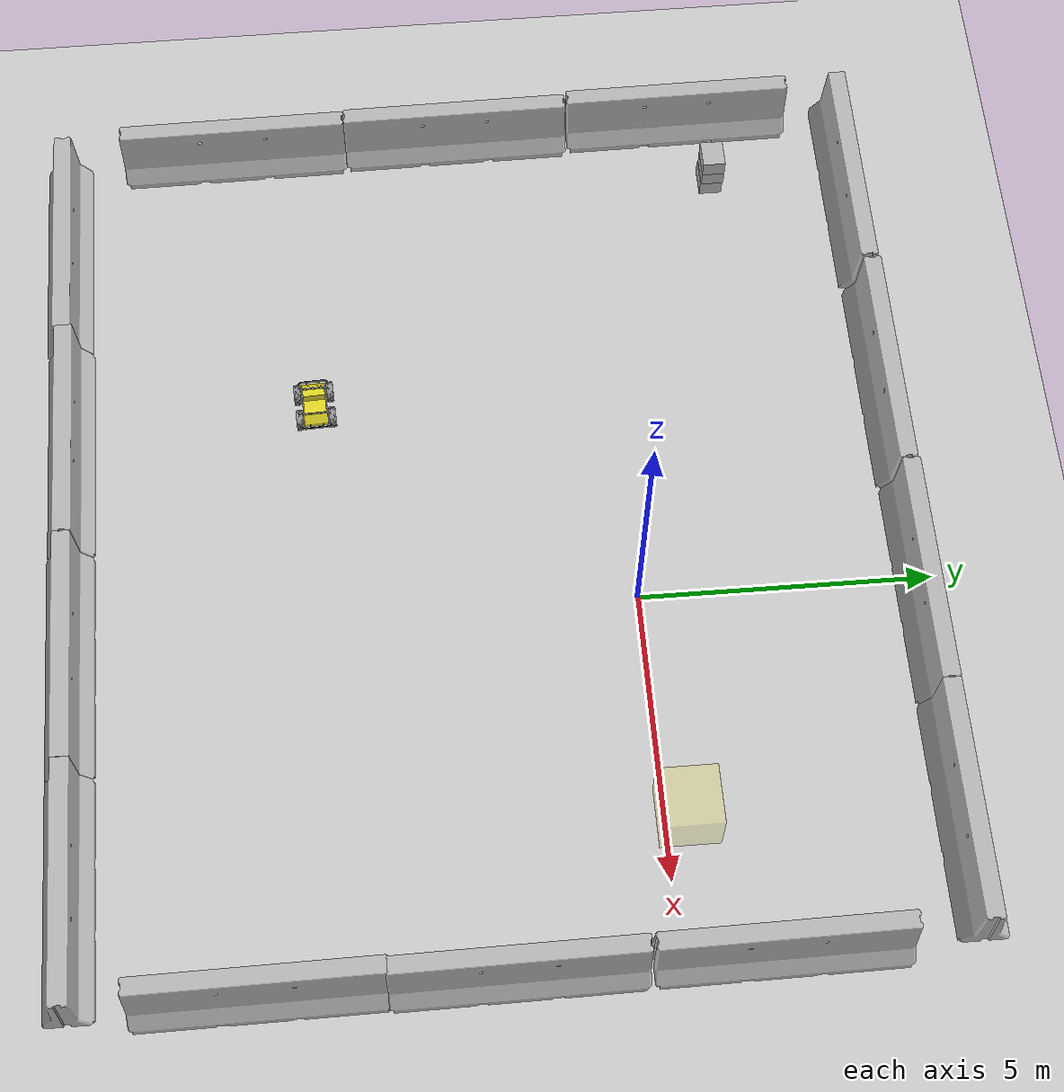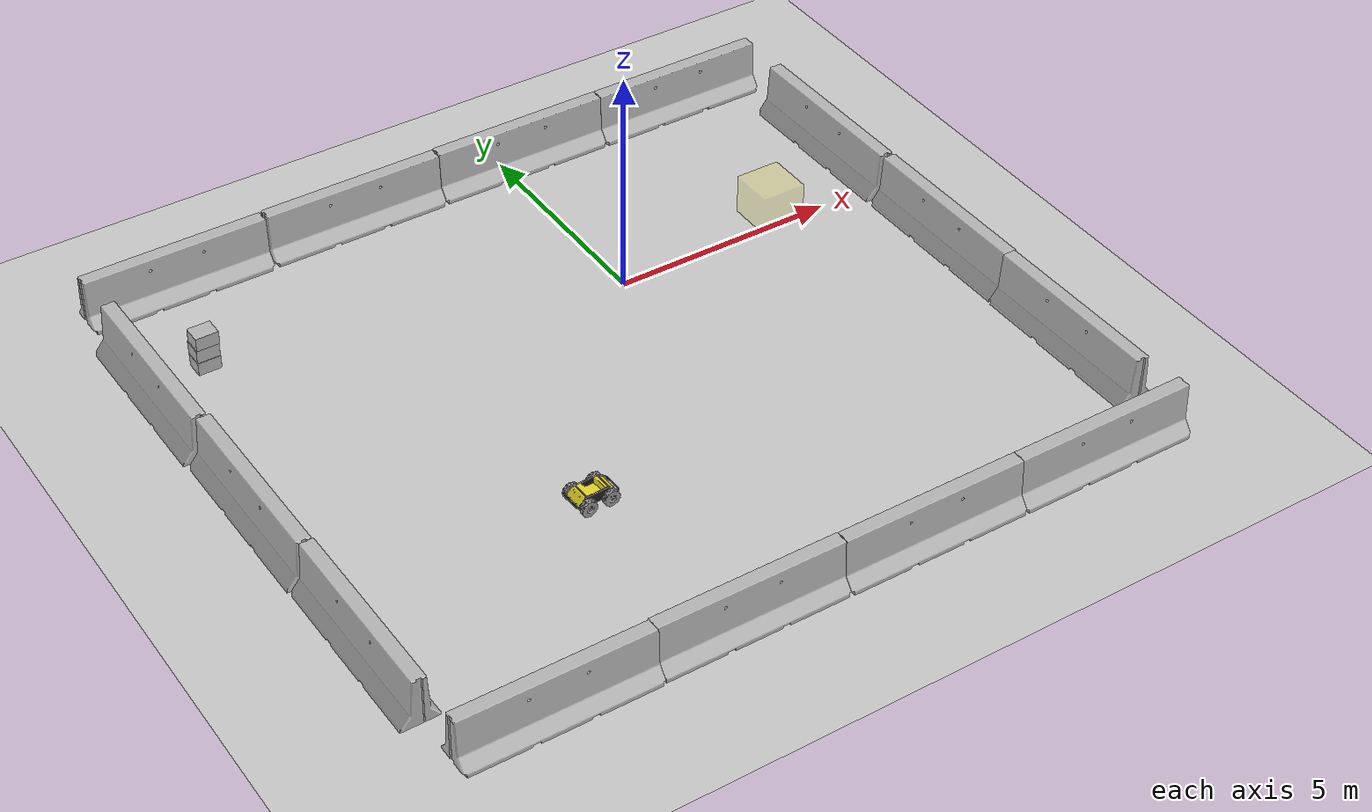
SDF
<sdf version="1.6">
 <world name="default">
  <light name="sun" type="directional">
   <pose>0 0 10 0 -0 0</pose>
   <diffuse>0.8 0.8 0.8 1</diffuse>
   <specular>0.2 0.2 0.2 1</specular>
   <attenuation>
    <range>1000</range>
    <constant>0.9</constant>
    <linear>0.01</linear>
    <quadratic>0.001</quadratic>
   </attenuation>
   <direction>-0.5 0.1 -0.9</direction>
  </light>
  <model name="ground_plane">
   <static>1</static>
   <link name="link">
    <collision name="collision">
     <geometry><plane><normal>0 0 1</normal><size>100 100</size></plane></geometry>
     <surface><friction><ode><mu>100</mu><mu2>50</mu2></ode></friction></surface>
    </collision>
    <visual name="visual">
     <cast_shadows>0</cast_shadows>
     <geometry><plane><normal>0 0 1</normal><size>100 100</size></plane></geometry>
     <material>
      <script><uri>file://media/materials/scripts/gazebo.material</uri><name>Gazebo/Grey</name></script>
     </material>
    </visual>
   </link>
  </model>
  <gravity>0 0 -9.8</gravity>
  <magnetic_field>6e-06 2.3e-05 -4.2e-05</magnetic_field>
  <atmosphere type="adiabatic"/>
  <physics name="default_physics" default="0" type="ode">
   <max_step_size>0.001</max_step_size>
   <real_time_factor>1</real_time_factor>
   <real_time_update_rate>1000</real_time_update_rate>
  </physics>
  <scene><ambient>0.4 0.4 0.4 1</ambient><background>0.7 0.7 0.7 1</background><shadows>1</shadows></scene>
  <audio><device>default</device></audio>
  <spherical_coordinates>
   <surface_model>EARTH_WGS84</surface_model>
   <latitude_deg>0</latitude_deg>
   <longitude_deg>0</longitude_deg>
   <elevation>0</elevation>
   <heading_deg>0</heading_deg>
  </spherical_coordinates>
  <model name="jersey_barrier">
   <static>1</static>
   <link name="link">
    <visual name="visual">
     <geometry><mesh><uri>model://jersey_barrier/meshes/jersey_barrier.dae</uri></mesh></geometry>
    </visual>
    <collision name="upright">
     <pose>0 0 0.5715 0 -0 0</pose>
     <geometry><box><size>4.06542 0.3063 1.143</size></box></geometry>
    </collision>
    <collision name="base">
     <pose>0 0 0.032258 0 -0 0</pose>
     <geometry><box><size>4.06542 0.8107 0.064516</size></box></geometry>
    </collision>
    <collision name="base2">
     <pose>0 0 0.1 0 -0 0</pose>
     <geometry><box><size>4.06542 0.65 0.1</size></box></geometry>
    </collision>
    <collision name="base3">
     <pose>0 0 0.2 0 -0 0</pose>
     <geometry><box><size>4.06542 0.5 0.1</size></box></geometry>
    </collision>
    <collision name="left-angle">
     <pose>0 -0.224 0.2401 0.9 -0 0</pose>
     <geometry><box><size>4.06542 0.5 0.064516</size></box></geometry>
    </collision>
    <collision name="right-angle">
     <pose>0 0.224 0.2401 -0.9 0 0</pose>
     <geometry><box><size>4.06542 0.5 0.064516</size></box></geometry>
    </collision>
   </link>
   <pose>-7.48902 -9.51876 0 0 -0 0</pose>
  </model>
  <model name="jersey_barrier_0">
   <static>1</static>
   <link name="link">
    <visual name="visual">
     <geometry><mesh><uri>model://jersey_barrier/meshes/jersey_barrier.dae</uri></mesh></geometry>
    </visual>
    <collision name="upright">
     <pose>0 0 0.5715 0 -0 0</pose>
     <geometry><box><size>4.06542 0.3063 1.143</size></box></geometry>
    </collision>
    <collision name="base">
     <pose>0 0 0.032258 0 -0 0</pose>
     <geometry><box><size>4.06542 0.8107 0.064516</size></box></geometry>
    </collision>
    <collision name="base2">
     <pose>0 0 0.1 0 -0 0</pose>
     <geometry><box><size>4.06542 0.65 0.1</size></box></geometry>
    </collision>
    <collision name="base3">
     <pose>0 0 0.2 0 -0 0</pose>
     <geometry><box><size>4.06542 0.5 0.1</size></box></geometry>
    </collision>
    <collision name="left-angle">
     <pose>0 -0.224 0.2401 0.9 -0 0</pose>
     <geometry><box><size>4.06542 0.5 0.064516</size></box></geometry>
    </collision>
    <collision name="right-angle">
     <pose>0 0.224 0.2401 -0.9 0 0</pose>
     <geometry><box><size>4.06542 0.5 0.064516</size></box></geometry>
    </collision>
   </link>
   <pose>-3.47619 -9.48837 0 0 -0 0</pose>
  </model>
  <model name="jersey_barrier_clone">
   <static>1</static>
   <link name="link">
    <visual name="visual">
     <geometry><mesh><uri>model://jersey_barrier/meshes/jersey_barrier.dae</uri></mesh></geometry>
    </visual>
    <collision name="upright">
     <pose>0 0 0.5715 0 -0 0</pose>
     <geometry><box><size>4.06542 0.3063 1.143</size></box></geometry>
    </collision>
    <collision name="base">
     <pose>0 0 0.032258 0 -0 0</pose>
     <geometry><box><size>4.06542 0.8107 0.064516</size></box></geometry>
    </collision>
    <collision name="base2">
     <pose>0 0 0.1 0 -0 0</pose>
     <geometry><box><size>4.06542 0.65 0.1</size></box></geometry>
    </collision>
    <collision name="base3">
     <pose>0 0 0.2 0 -0 0</pose>
     <geometry><box><size>4.06542 0.5 0.1</size></box></geometry>
    </collision>
    <collision name="left-angle">
     <pose>0 -0.224 0.2401 0.9 -0 0</pose>
     <geometry><box><size>4.06542 0.5 0.064516</size></box></geometry>
    </collision>
    <collision name="right-angle">
     <pose>0 0.224 0.2401 -0.9 0 0</pose>
     <geometry><box><size>4.06542 0.5 0.064516</size></box></geometry>
    </collision>
   </link>
   <pose>0.564448 -9.49927 0 0 -0 0</pose>
  </model>
  <model name="jersey_barrier_clone_0">
   <static>1</static>
   <link name="link">
    <visual name="visual">
     <geometry><mesh><uri>model://jersey_barrier/meshes/jersey_barrier.dae</uri></mesh></geometry>
    </visual>
    <collision name="upright">
     <pose>0 0 0.5715 0 -0 0</pose>
     <geometry><box><size>4.06542 0.3063 1.143</size></box></geometry>
    </collision>
    <collision name="base">
     <pose>0 0 0.032258 0 -0 0</pose>
     <geometry><box><size>4.06542 0.8107 0.064516</size></box></geometry>
    </collision>
    <collision name="base2">
     <pose>0 0 0.1 0 -0 0</pose>
     <geometry><box><size>4.06542 0.65 0.1</size></box></geometry>
    </collision>
    <collision name="base3">
     <pose>0 0 0.2 0 -0 0</pose>
     <geometry><box><size>4.06542 0.5 0.1</size></box></geometry>
    </collision>
    <collision name="left-angle">
     <pose>0 -0.224 0.2401 0.9 -0 0</pose>
     <geometry><box><size>4.06542 0.5 0.064516</size></box></geometry>
    </collision>
    <collision name="right-angle">
     <pose>0 0.224 0.2401 -0.9 0 0</pose>
     <geometry><box><size>4.06542 0.5 0.064516</size></box></geometry>
    </collision>
   </link>
   <pose>4.5827 -9.50146 0 0 -0 0</pose>
  </model>
  <model name="jersey_barrier_clone_1">
   <static>1</static>
   <link name="link">
    <visual name="visual">
     <geometry><mesh><uri>model://jersey_barrier/meshes/jersey_barrier.dae</uri></mesh></geometry>
    </visual>
    <collision name="upright">
     <pose>0 0 0.5715 0 -0 0</pose>
     <geometry><box><size>4.06542 0.3063 1.143</size></box></geometry>
    </collision>
    <collision name="base">
     <pose>0 0 0.032258 0 -0 0</pose>
     <geometry><box><size>4.06542 0.8107 0.064516</size></box></geometry>
    </collision>
    <collision name="base2">
     <pose>0 0 0.1 0 -0 0</pose>
     <geometry><box><size>4.06542 0.65 0.1</size></box></geometry>
    </collision>
    <collision name="base3">
     <pose>0 0 0.2 0 -0 0</pose>
     <geometry><box><size>4.06542 0.5 0.1</size></box></geometry>
    </collision>
    <collision name="left-angle">
     <pose>0 -0.224 0.2401 0.9 -0 0</pose>
     <geometry><box><size>4.06542 0.5 0.064516</size></box></geometry>
    </collision>
    <collision name="right-angle">
     <pose>0 0.224 0.2401 -0.9 0 0</pose>
     <geometry><box><size>4.06542 0.5 0.064516</size></box></geometry>
    </collision>
   </link>
   <pose>6.3588 -6.55126 0 0 -0 1.58032</pose>
  </model>
  <model name="jersey_barrier_clone_1_clone">
   <static>1</static>
   <link name="link">
    <visual name="visual">
     <geometry><mesh><uri>model://jersey_barrier/meshes/jersey_barrier.dae</uri></mesh></geometry>
    </visual>
    <collision name="upright">
     <pose>0 0 0.5715 0 -0 0</pose>
     <geometry><box><size>4.06542 0.3063 1.143</size></box></geometry>
    </collision>
    <collision name="base">
     <pose>0 0 0.032258 0 -0 0</pose>
     <geometry><box><size>4.06542 0.8107 0.064516</size></box></geometry>
    </collision>
    <collision name="base2">
     <pose>0 0 0.1 0 -0 0</pose>
     <geometry><box><size>4.06542 0.65 0.1</size></box></geometry>
    </collision>
    <collision name="base3">
     <pose>0 0 0.2 0 -0 0</pose>
     <geometry><box><size>4.06542 0.5 0.1</size></box></geometry>
    </collision>
    <collision name="left-angle">
     <pose>0 -0.224 0.2401 0.9 -0 0</pose>
     <geometry><box><size>4.06542 0.5 0.064516</size></box></geometry>
    </collision>
    <collision name="right-angle">
     <pose>0 0.224 0.2401 -0.9 0 0</pose>
     <geometry><box><size>4.06542 0.5 0.064516</size></box></geometry>
    </collision>
   </link>
   <pose>6.34706 -2.54386 0 0 -0 1.58032</pose>
  </model>
  <model name="jersey_barrier_clone_1_clone_clone">
   <static>1</static>
   <link name="link">
    <visual name="visual">
     <geometry><mesh><uri>model://jersey_barrier/meshes/jersey_barrier.dae</uri></mesh></geometry>
    </visual>
    <collision name="upright">
     <pose>0 0 0.5715 0 -0 0</pose>
     <geometry><box><size>4.06542 0.3063 1.143</size></box></geometry>
    </collision>
    <collision name="base">
     <pose>0 0 0.032258 0 -0 0</pose>
     <geometry><box><size>4.06542 0.8107 0.064516</size></box></geometry>
    </collision>
    <collision name="base2">
     <pose>0 0 0.1 0 -0 0</pose>
     <geometry><box><size>4.06542 0.65 0.1</size></box></geometry>
    </collision>
    <collision name="base3">
     <pose>0 0 0.2 0 -0 0</pose>
     <geometry><box><size>4.06542 0.5 0.1</size></box></geometry>
    </collision>
    <collision name="left-angle">
     <pose>0 -0.224 0.2401 0.9 -0 0</pose>
     <geometry><box><size>4.06542 0.5 0.064516</size></box></geometry>
    </collision>
    <collision name="right-angle">
     <pose>0 0.224 0.2401 -0.9 0 0</pose>
     <geometry><box><size>4.06542 0.5 0.064516</size></box></geometry>
    </collision>
   </link>
   <pose>6.30204 1.57971 0 0 -0 1.58032</pose>
  </model>
  <model name="jersey_barrier_clone_1_clone_clone_0">
   <static>1</static>
   <link name="link">
    <visual name="visual">
     <geometry><mesh><uri>model://jersey_barrier/meshes/jersey_barrier.dae</uri></mesh></geometry>
    </visual>
    <collision name="upright">
     <pose>0 0 0.5715 0 -0 0</pose>
     <geometry><box><size>4.06542 0.3063 1.143</size></box></geometry>
    </collision>
    <collision name="base">
     <pose>0 0 0.032258 0 -0 0</pose>
     <geometry><box><size>4.06542 0.8107 0.064516</size></box></geometry>
    </collision>
    <collision name="base2">
     <pose>0 0 0.1 0 -0 0</pose>
     <geometry><box><size>4.06542 0.65 0.1</size></box></geometry>
    </collision>
    <collision name="base3">
     <pose>0 0 0.2 0 -0 0</pose>
     <geometry><box><size>4.06542 0.5 0.1</size></box></geometry>
    </collision>
    <collision name="left-angle">
     <pose>0 -0.224 0.2401 0.9 -0 0</pose>
     <geometry><box><size>4.06542 0.5 0.064516</size></box></geometry>
    </collision>
    <collision name="right-angle">
     <pose>0 0.224 0.2401 -0.9 0 0</pose>
     <geometry><box><size>4.06542 0.5 0.064516</size></box></geometry>
    </collision>
   </link>
   <pose>-9.53349 -6.46202 0 0 -0 1.58032</pose>
  </model>
  <model name="jersey_barrier_clone_1_clone_clone_1">
   <static>1</static>
   <link name="link">
    <visual name="visual">
     <geometry><mesh><uri>model://jersey_barrier/meshes/jersey_barrier.dae</uri></mesh></geometry>
    </visual>
    <collision name="upright">
     <pose>0 0 0.5715 0 -0 0</pose>
     <geometry><box><size>4.06542 0.3063 1.143</size></box></geometry>
    </collision>
    <collision name="base">
     <pose>0 0 0.032258 0 -0 0</pose>
     <geometry><box><size>4.06542 0.8107 0.064516</size></box></geometry>
    </collision>
    <collision name="base2">
     <pose>0 0 0.1 0 -0 0</pose>
     <geometry><box><size>4.06542 0.65 0.1</size></box></geometry>
    </collision>
    <collision name="base3">
     <pose>0 0 0.2 0 -0 0</pose>
     <geometry><box><size>4.06542 0.5 0.1</size></box></geometry>
    </collision>
    <collision name="left-angle">
     <pose>0 -0.224 0.2401 0.9 -0 0</pose>
     <geometry><box><size>4.06542 0.5 0.064516</size></box></geometry>
    </collision>
    <collision name="right-angle">
     <pose>0 0.224 0.2401 -0.9 0 0</pose>
     <geometry><box><size>4.06542 0.5 0.064516</size></box></geometry>
    </collision>
   </link>
   <pose>-9.60089 -2.39504 0 0 -0 1.58032</pose>
  </model>
  <model name="jersey_barrier_clone_1_clone_clone_2">
   <static>1</static>
   <link name="link">
    <visual name="visual">
     <geometry><mesh><uri>model://jersey_barrier/meshes/jersey_barrier.dae</uri></mesh></geometry>
    </visual>
    <collision name="upright">
     <pose>0 0 0.5715 0 -0 0</pose>
     <geometry><box><size>4.06542 0.3063 1.143</size></box></geometry>
    </collision>
    <collision name="base">
     <pose>0 0 0.032258 0 -0 0</pose>
     <geometry><box><size>4.06542 0.8107 0.064516</size></box></geometry>
    </collision>
    <collision name="base2">
     <pose>0 0 0.1 0 -0 0</pose>
     <geometry><box><size>4.06542 0.65 0.1</size></box></geometry>
    </collision>
    <collision name="base3">
     <pose>0 0 0.2 0 -0 0</pose>
     <geometry><box><size>4.06542 0.5 0.1</size></box></geometry>
    </collision>
    <collision name="left-angle">
     <pose>0 -0.224 0.2401 0.9 -0 0</pose>
     <geometry><box><size>4.06542 0.5 0.064516</size></box></geometry>
    </collision>
    <collision name="right-angle">
     <pose>0 0.224 0.2401 -0.9 0 0</pose>
     <geometry><box><size>4.06542 0.5 0.064516</size></box></geometry>
    </collision>
   </link>
   <pose>-9.70481 1.70655 0 0 -0 1.58032</pose>
  </model>
  <model name="jersey_barrier_clone_2">
   <static>1</static>
   <link name="link">
    <visual name="visual">
     <geometry><mesh><uri>model://jersey_barrier/meshes/jersey_barrier.dae</uri></mesh></geometry>
    </visual>
    <collision name="upright">
     <pose>0 0 0.5715 0 -0 0</pose>
     <geometry><box><size>4.06542 0.3063 1.143</size></box></geometry>
    </collision>
    <collision name="base">
     <pose>0 0 0.032258 0 -0 0</pose>
     <geometry><box><size>4.06542 0.8107 0.064516</size></box></geometry>
    </collision>
    <collision name="base2">
     <pose>0 0 0.1 0 -0 0</pose>
     <geometry><box><size>4.06542 0.65 0.1</size></box></geometry>
    </collision>
    <collision name="base3">
     <pose>0 0 0.2 0 -0 0</pose>
     <geometry><box><size>4.06542 0.5 0.1</size></box></geometry>
    </collision>
    <collision name="left-angle">
     <pose>0 -0.224 0.2401 0.9 -0 0</pose>
     <geometry><box><size>4.06542 0.5 0.064516</size></box></geometry>
    </collision>
    <collision name="right-angle">
     <pose>0 0.224 0.2401 -0.9 0 0</pose>
     <geometry><box><size>4.06542 0.5 0.064516</size></box></geometry>
    </collision>
   </link>
   <pose>-7.85689 4.69097 0 0 -0 0</pose>
  </model>
  <model name="jersey_barrier_clone_3">
   <static>1</static>
   <link name="link">
    <visual name="visual">
     <geometry><mesh><uri>model://jersey_barrier/meshes/jersey_barrier.dae</uri></mesh></geometry>
    </visual>
    <collision name="upright">
     <pose>0 0 0.5715 0 -0 0</pose>
     <geometry><box><size>4.06542 0.3063 1.143</size></box></geometry>
    </collision>
    <collision name="base">
     <pose>0 0 0.032258 0 -0 0</pose>
     <geometry><box><size>4.06542 0.8107 0.064516</size></box></geometry>
    </collision>
    <collision name="base2">
     <pose>0 0 0.1 0 -0 0</pose>
     <geometry><box><size>4.06542 0.65 0.1</size></box></geometry>
    </collision>
    <collision name="base3">
     <pose>0 0 0.2 0 -0 0</pose>
     <geometry><box><size>4.06542 0.5 0.1</size></box></geometry>
    </collision>
    <collision name="left-angle">
     <pose>0 -0.224 0.2401 0.9 -0 0</pose>
     <geometry><box><size>4.06542 0.5 0.064516</size></box></geometry>
    </collision>
    <collision name="right-angle">
     <pose>0 0.224 0.2401 -0.9 0 0</pose>
     <geometry><box><size>4.06542 0.5 0.064516</size></box></geometry>
    </collision>
   </link>
   <pose>-3.75261 4.72372 0 0 -0 0</pose>
  </model>
  <model name="jersey_barrier_clone_4">
   <static>1</static>
   <link name="link">
    <visual name="visual">
     <geometry><mesh><uri>model://jersey_barrier/meshes/jersey_barrier.dae</uri></mesh></geometry>
    </visual>
    <collision name="upright">
     <pose>0 0 0.5715 0 -0 0</pose>
     <geometry><box><size>4.06542 0.3063 1.143</size></box></geometry>
    </collision>
    <collision name="base">
     <pose>0 0 0.032258 0 -0 0</pose>
     <geometry><box><size>4.06542 0.8107 0.064516</size></box></geometry>
    </collision>
    <collision name="base2">
     <pose>0 0 0.1 0 -0 0</pose>
     <geometry><box><size>4.06542 0.65 0.1</size></box></geometry>
    </collision>
    <collision name="base3">
     <pose>0 0 0.2 0 -0 0</pose>
     <geometry><box><size>4.06542 0.5 0.1</size></box></geometry>
    </collision>
    <collision name="left-angle">
     <pose>0 -0.224 0.2401 0.9 -0 0</pose>
     <geometry><box><size>4.06542 0.5 0.064516</size></box></geometry>
    </collision>
    <collision name="right-angle">
     <pose>0 0.224 0.2401 -0.9 0 0</pose>
     <geometry><box><size>4.06542 0.5 0.064516</size></box></geometry>
    </collision>
   </link>
   <pose>0.316929 4.75509 0 0 -0 0</pose>
  </model>
  <model name="jersey_barrier_clone_5">
   <static>1</static>
   <link name="link">
    <visual name="visual">
     <geometry><mesh><uri>model://jersey_barrier/meshes/jersey_barrier.dae</uri></mesh></geometry>
    </visual>
    <collision name="upright">
     <pose>0 0 0.5715 0 -0 0</pose>
     <geometry><box><size>4.06542 0.3063 1.143</size></box></geometry>
    </collision>
    <collision name="base">
     <pose>0 0 0.032258 0 -0 0</pose>
     <geometry><box><size>4.06542 0.8107 0.064516</size></box></geometry>
    </collision>
    <collision name="base2">
     <pose>0 0 0.1 0 -0 0</pose>
     <geometry><box><size>4.06542 0.65 0.1</size></box></geometry>
    </collision>
    <collision name="base3">
     <pose>0 0 0.2 0 -0 0</pose>
     <geometry><box><size>4.06542 0.5 0.1</size></box></geometry>
    </collision>
    <collision name="left-angle">
     <pose>0 -0.224 0.2401 0.9 -0 0</pose>
     <geometry><box><size>4.06542 0.5 0.064516</size></box></geometry>
    </collision>
    <collision name="right-angle">
     <pose>0 0.224 0.2401 -0.9 0 0</pose>
     <geometry><box><size>4.06542 0.5 0.064516</size></box></geometry>
    </collision>
   </link>
   <pose>4.35296 4.7508 0 0 -0 0</pose>
  </model>
  <model name="cardboard_box">
   <pose>-8.41424 2.24088 0.447997 -1e-06 0 6.7e-05</pose>
   <link name="link">
    <inertial>
     <mass>2</mass>
     <inertia>
      <ixx>0.0416667</ixx>
      <ixy>0</ixy>
      <ixz>0</ixz>
      <iyy>0.0566667</iyy>
      <iyz>0</iyz>
      <izz>0.0683333</izz>
     </inertia>
    </inertial>
    <collision name="collision">
     <geometry><box><size>0.5 0.4 0.3</size></box></geometry>
     <surface>
      <friction><ode><mu>1</mu><mu2>1</mu2></ode></friction>
      <contact><ode><kp>1e+07</kp><kd>1</kd><min_depth>0.001</min_depth><max_vel>0.1</max_vel></ode></contact>
     </surface>
    </collision>
    <visual name="visual">
     <pose>0 0 -0.15 0 -0 0</pose>
     <geometry>
      <mesh><uri>model://cardboard_box/meshes/cardboard_box.dae</uri><scale>1.25932 1.00745 0.755591</scale></mesh>
     </geometry>
    </visual>
   </link>
  </model>
  <model name="cardboard_box_clone">
   <pose>-8.41769 2.22289 0.148999 0 -0 8.1e-05</pose>
   <link name="link">
    <inertial>
     <mass>2</mass>
     <inertia>
      <ixx>0.0416667</ixx>
      <ixy>0</ixy>
      <ixz>0</ixz>
      <iyy>0.0566667</iyy>
      <iyz>0</iyz>
      <izz>0.0683333</izz>
     </inertia>
    </inertial>
    <collision name="collision">
     <geometry><box><size>0.5 0.4 0.3</size></box></geometry>
     <surface>
      <friction><ode><mu>1</mu><mu2>1</mu2></ode></friction>
      <contact><ode><kp>1e+07</kp><kd>1</kd><min_depth>0.001</min_depth><max_vel>0.1</max_vel></ode></contact>
     </surface>
    </collision>
    <visual name="visual">
     <pose>0 0 -0.15 0 -0 0</pose>
     <geometry>
      <mesh><uri>model://cardboard_box/meshes/cardboard_box.dae</uri><scale>1.25932 1.00745 0.755591</scale></mesh>
     </geometry>
    </visual>
   </link>
  </model>
  <model name="cardboard_box_clone_0">
   <pose>-8.4001 2.23482 0.746996 -1e-06 1e-06 0.000136</pose>
   <link name="link">
    <inertial>
     <mass>2</mass>
     <inertia>
      <ixx>0.0416667</ixx>
      <ixy>0</ixy>
      <ixz>0</ixz>
      <iyy>0.0566667</iyy>
      <iyz>0</iyz>
      <izz>0.0683333</izz>
     </inertia>
    </inertial>
    <collision name="collision">
     <geometry><box><size>0.5 0.4 0.3</size></box></geometry>
     <surface>
      <friction><ode><mu>1</mu><mu2>1</mu2></ode></friction>
      <contact><ode><kp>1e+07</kp><kd>1</kd><min_depth>0.001</min_depth><max_vel>0.1</max_vel></ode></contact>
     </surface>
    </collision>
    <visual name="visual">
     <pose>0 0 -0.15 0 -0 0</pose>
     <geometry>
      <mesh><uri>model://cardboard_box/meshes/cardboard_box.dae</uri><scale>1.25932 1.00745 0.755591</scale></mesh>
     </geometry>
    </visual>
   </link>
  </model>
  <model name="husky">
   <pose>-4.07102 -5.23808 0.142753 0 6e-06 0.046898</pose>
   <link name="base_link">
    <collision name="collision">
     <pose>0 0 0.1 0 -0 0</pose>
     <geometry><box><size>1.0074 0.5709 0.2675</size></box></geometry>
    </collision>
    <inertial>
     <mass>33.855</mass>
     <pose>-0.085613 -0.00084 0.238145 0 -0 0</pose>
     <inertia>
      <ixx>2.2343</ixx>
      <ixy>-0.023642</ixy>
      <ixz>0.275174</ixz>
      <iyy>3.42518</iyy>
      <iyz>0.00239624</iyz>
      <izz>2.1241</izz>
     </inertia>
    </inertial>
    <visual name="base">
     <geometry><mesh><uri>model://husky/meshes/base_link.stl</uri></mesh></geometry>
     <material><script><name>Gazebo/FlatBlack</name><uri>__default__</uri></script></material>
    </visual>
    <visual name="top_plate">
     <geometry><mesh><uri>model://husky/meshes/top_plate.stl</uri></mesh></geometry>
     <material><script><name>Gazebo/Yellow</name><uri>__default__</uri></script></material>
    </visual>
    <visual name="front_bumper">
     <pose>0.47 0 0.091 0 -0 0</pose>
     <geometry><mesh><uri>model://husky/meshes/bumper.stl</uri></mesh></geometry>
     <material><script><name>Gazebo/FlatBlack</name><uri>__default__</uri></script></material>
    </visual>
    <visual name="rear_bumper">
     <pose>-0.47 0 0.091 0 -0 3.141</pose>
     <geometry><mesh><uri>model://husky/meshes/bumper.stl</uri></mesh></geometry>
     <material><script><name>Gazebo/FlatBlack</name><uri>__default__</uri></script></material>
    </visual>
    <visual name="user_rail">
     <pose>0.272 0 0.245 0 -0 0</pose>
     <geometry><mesh><uri>model://husky/meshes/user_rail.stl</uri></mesh></geometry>
     <material><script><name>Gazebo/Grey</name><uri>__default__</uri></script></material>
    </visual>
   </link>
   <link name="back_left_wheel">
    <pose>-0.256 0.285475 0.035 0 -0 0</pose>
    <inertial>
     <mass>2.6357</mass>
     <inertia>
      <ixx>0.0246688</ixx>
      <ixy>0</ixy>
      <ixz>0</ixz>
      <iyy>0.0246688</iyy>
      <iyz>0</iyz>
      <izz>0.0441058</izz>
     </inertia>
    </inertial>
    <collision name="back_left_wheel_collision">
     <pose>0 0 0 -1.5707 0 0</pose>
     <geometry><cylinder><radius>0.17775</radius><length>0.1143</length></cylinder></geometry>
     <surface>
      <friction><ode><mu>100000</mu><mu2>100000</mu2><slip1>0</slip1><slip2>0</slip2></ode></friction>
     </surface>
    </collision>
    <visual name="back_left_wheel">
     <pose>0 0 0 -3.14159 0 0</pose>
     <geometry><mesh><uri>model://husky/meshes/wheel.stl</uri></mesh></geometry>
     <material><script><name>Gazebo/Grey</name><uri>__default__</uri></script></material>
    </visual>
   </link>
   <joint name="back_left_joint" type="revolute">
    <parent>base_link</parent>
    <child>back_left_wheel</child>
    <axis>
     <xyz>0 1 0</xyz>
     <use_parent_model_frame>1</use_parent_model_frame>
     <limit><lower>-1e+16</lower><upper>1e+16</upper></limit>
     <dynamics><spring_reference>0</spring_reference><spring_stiffness>0</spring_stiffness></dynamics>
    </axis>
    <physics><ode><limit><cfm>0</cfm><erp>0.9</erp></limit></ode></physics>
   </joint>
   <link name="back_right_wheel">
    <pose>-0.256 -0.285475 0.035 0 -0 0</pose>
    <inertial>
     <mass>2.6357</mass>
     <inertia>
      <ixx>0.0246688</ixx>
      <ixy>0</ixy>
      <ixz>0</ixz>
      <iyy>0.0246688</iyy>
      <iyz>0</iyz>
      <izz>0.0441058</izz>
     </inertia>
    </inertial>
    <collision name="back_right_wheel_collision">
     <pose>0 0 0 -1.5707 0 0</pose>
     <geometry><cylinder><radius>0.17775</radius><length>0.1143</length></cylinder></geometry>
     <surface>
      <friction><ode><mu>100000</mu><mu2>100000</mu2><slip1>0</slip1><slip2>0</slip2></ode></friction>
     </surface>
    </collision>
    <visual name="back_right_wheel">
     <pose>0 0 0 -3.14159 0 0</pose>
     <geometry><mesh><uri>model://husky/meshes/wheel.stl</uri></mesh></geometry>
     <material><script><name>Gazebo/Grey</name><uri>__default__</uri></script></material>
    </visual>
   </link>
   <joint name="back_right_joint" type="revolute">
    <parent>base_link</parent>
    <child>back_right_wheel</child>
    <axis>
     <xyz>0 1 0</xyz>
     <use_parent_model_frame>1</use_parent_model_frame>
     <limit><lower>-1e+16</lower><upper>1e+16</upper></limit>
     <dynamics><spring_reference>0</spring_reference><spring_stiffness>0</spring_stiffness></dynamics>
    </axis>
    <physics><ode><limit><cfm>0</cfm><erp>0.9</erp></limit></ode></physics>
   </joint>
   <link name="front_left_wheel">
    <pose>0.256 0.285475 0.035 0 -0 0</pose>
    <inertial>
     <mass>2.6357</mass>
     <inertia>
      <ixx>0.0246688</ixx>
      <ixy>0</ixy>
      <ixz>0</ixz>
      <iyy>0.0246688</iyy>
      <iyz>0</iyz>
      <izz>0.0441058</izz>
     </inertia>
    </inertial>
    <collision name="front_left_wheel_collision">
     <pose>0 0 0 -1.5707 0 0</pose>
     <geometry><cylinder><radius>0.17775</radius><length>0.1143</length></cylinder></geometry>
     <surface>
      <friction><ode><mu>100000</mu><mu2>100000</mu2><slip1>0</slip1><slip2>0</slip2></ode></friction>
     </surface>
    </collision>
    <visual name="front_left_wheel">
     <pose>0 0 0 -3.14159 0 0</pose>
     <geometry><mesh><uri>model://husky/meshes/wheel.stl</uri></mesh></geometry>
     <material><script><name>Gazebo/Grey</name><uri>__default__</uri></script></material>
    </visual>
   </link>
   <joint name="front_left_joint" type="revolute">
    <parent>base_link</parent>
    <child>front_left_wheel</child>
    <axis>
     <xyz>0 1 0</xyz>
     <use_parent_model_frame>1</use_parent_model_frame>
     <limit><lower>-1e+16</lower><upper>1e+16</upper></limit>
     <dynamics><spring_reference>0</spring_reference><spring_stiffness>0</spring_stiffness></dynamics>
    </axis>
    <physics><ode><limit><cfm>0</cfm><erp>0.9</erp></limit></ode></physics>
   </joint>
   <link name="front_right_wheel">
    <pose>0.256 -0.285475 0.035 0 -0 0</pose>
    <inertial>
     <mass>2.6357</mass>
     <inertia>
      <ixx>0.0246688</ixx>
      <ixy>0</ixy>
      <ixz>0</ixz>
      <iyy>0.0246688</iyy>
      <iyz>0</iyz>
      <izz>0.0441058</izz>
     </inertia>
    </inertial>
    <collision name="front_right_wheel_collision">
     <pose>0 0 0 -1.5707 0 0</pose>
     <geometry><cylinder><radius>0.17775</radius><length>0.1143</length></cylinder></geometry>
     <surface>
      <friction><ode><mu>100000</mu><mu2>100000</mu2><slip1>0</slip1><slip2>0</slip2></ode></friction>
     </surface>
    </collision>
    <visual name="front_right_wheel">
     <pose>0 0 0 -3.14159 0 0</pose>
     <geometry><mesh><uri>model://husky/meshes/wheel.stl</uri></mesh></geometry>
     <material><script><name>Gazebo/Grey</name><uri>__default__</uri></script></material>
    </visual>
   </link>
   <joint name="front_right_joint" type="revolute">
    <parent>base_link</parent>
    <child>front_right_wheel</child>
    <axis>
     <xyz>0 1 0</xyz>
     <use_parent_model_frame>1</use_parent_model_frame>
     <limit><lower>-1e+16</lower><upper>1e+16</upper></limit>
     <dynamics><spring_reference>0</spring_reference><spring_stiffness>0</spring_stiffness></dynamics>
    </axis>
    <physics><ode><limit><cfm>0</cfm><erp>0.9</erp></limit></ode></physics>
   </joint>
   <plugin name="husky_diff_controller" filename="libhusky_gazebo_plugins.so">
    <alwaysOn>1</alwaysOn>
    <updateRate>100.0</updateRate>
    <backLeftJoint>back_left_joint</backLeftJoint>
    <backRightJoint>back_right_joint</backRightJoint>
    <frontLeftJoint>front_left_joint</frontLeftJoint>
    <frontRightJoint>front_right_joint</frontRightJoint>
    <wheelSeparation>0.5709</wheelSeparation>
    <wheelDiameter>0.3555</wheelDiameter>
    <torque>35</torque>
   </plugin>
  </model>
  <model name="RegionEventBox">
   <static>1</static>
   <pose>3.91842 0.372612 0 0 -0 0</pose>
   <link name="link">
    <visual name="visual">
     <transparency>0.75</transparency>
     <geometry><box><size>1 1 1.75</size></box></geometry>
     <material>
      <script><uri>file://media/materials/scripts/gazebo.material</uri><name>Gazebo/Yellow</name></script>
     </material>
    </visual>
   </link>
   <plugin name="region_event_box" filename="libRegionEventBoxPlugin.so">
    <event><name>model_in_region_event_box</name><type>inclusion</type><active>1</active></event>
   </plugin>
  </model>
 </world>
</sdf>
